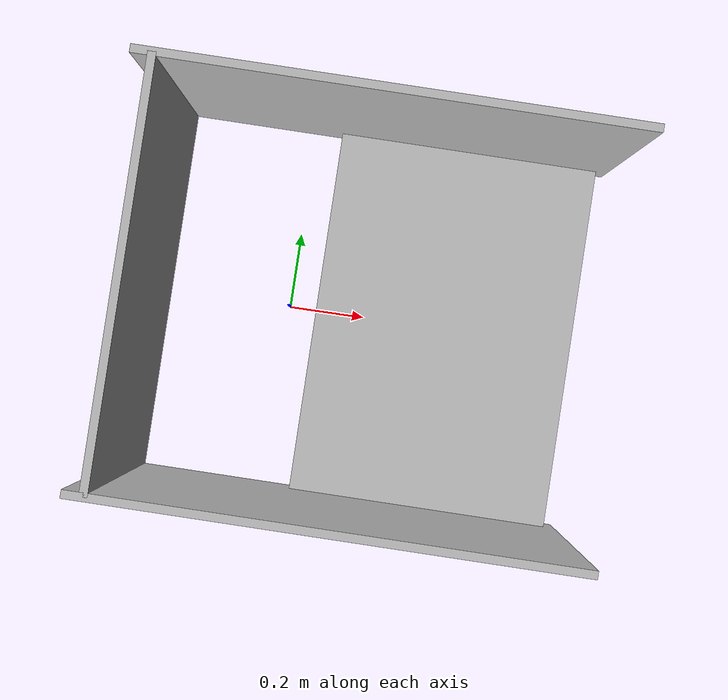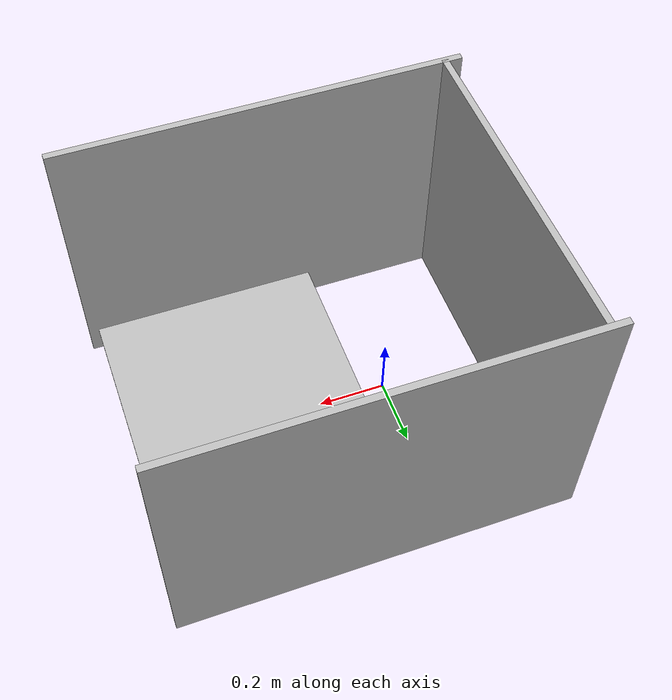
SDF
<?xml version="1.0" ?>
<sdf version="1.4">
  <!-- One can change this world to his needs or use another one. -->

  <world name="default">
    <model name="TableBehind">
			<pose> -0.35 0.0 0.35 0.0 0.0 0.0</pose>
			<static>true</static>
			<link name='linkTableBehind'>
				<pose>0 0 0 0 0 0</pose>

				<collision name="my_collisionlinkTableBehind">
		 			<pose>0 0 0 0 0 0</pose>
					<geometry>
		        <box>
		          <size>0.02 1.0 0.85</size>
		        </box>
		      </geometry>
	      </collision>

				<visual name="my_visuallinkTableBehind">
					<geometry>
		        <box>
					<size>0.02 1.0 0.85</size>
		        </box>
		      </geometry>
	      </visual>

				<self_collide>0</self_collide>
				<gravity>1</gravity>
			</link>
    </model>

	<model name="Table">
			<pose> 0.42 0.0 0.01 0.0 0.0 0.0</pose>
			<static>true</static>
			<link name='linkTable'>
				<pose>0 0 0 0 0 0</pose>

				<collision name="my_collisionTable">
		 			<pose>0 0 0 0 0 0</pose>
					<geometry>
		        <box>
		          <size>0.7 1.0 0.01</size>
		        </box>
		      </geometry>
	      </collision>

				<visual name="my_visualTable">
					<geometry>
		        <box>
					<size>0.7 1.0 0.01</size>
		        </box>
		      </geometry>
	      </visual>

				<self_collide>0</self_collide>
				<gravity>1</gravity>
		   </link>
    </model>

	<model name="TableRight">
			<pose>0.2 -0.50 0.35 0 0 0 </pose>
			<static>true</static>
			<link name='linkTableRight'>
				<pose>0 0 0 0 0 0</pose>

				<collision name="my_collisionTableRight">
		 			<pose>0 0 0 0 0 0</pose>
					<geometry>
		        <box>
		          <size>1.2 0.02 0.85</size>
		        </box>
		            </geometry>
	            </collision>

				<visual name="my_visualTableRight">
					<geometry>
		        <box>
					<size>1.2 0.02 0.85</size>
		        </box>
		           </geometry>
	      </visual>

				<self_collide>0</self_collide>
				<gravity>1</gravity>
			</link>
    </model>

	<model name="TableLeft">
			<pose>0.2 0.50 0.35 0 0 0 </pose>
			<static>true</static>
			<link name='linkTableLeft'>
				<pose>0 0 0 0 0 0</pose>

				<collision name="my_collisionTableLeft">
		 			<pose>0 0 0 0 0 0</pose>
					<geometry>
		        <box>
		          <size>1.2 0.02 0.85</size>
		        </box>
		            </geometry>
	            </collision>

				<visual name="my_visualTableLeft">
					<geometry>
		        <box>
					<size>1.2 0.02 0.85</size>
		        </box>
		           </geometry>
	      </visual>

				<self_collide>0</self_collide>
				<gravity>1</gravity>
			</link>
    </model>

</world>
</sdf>
